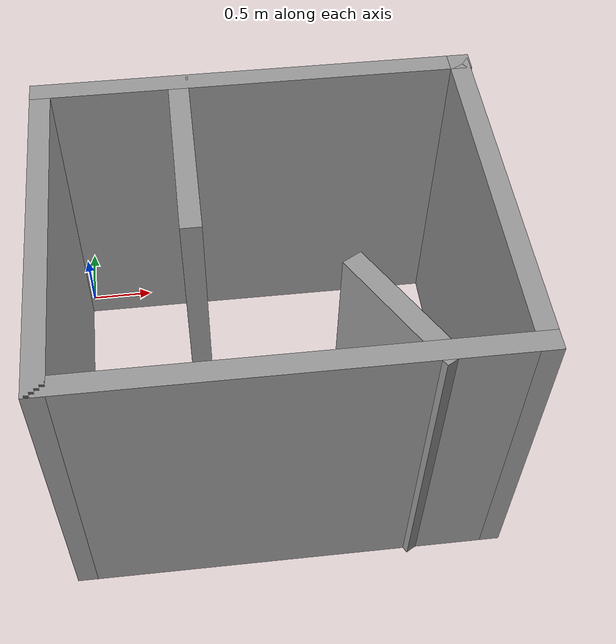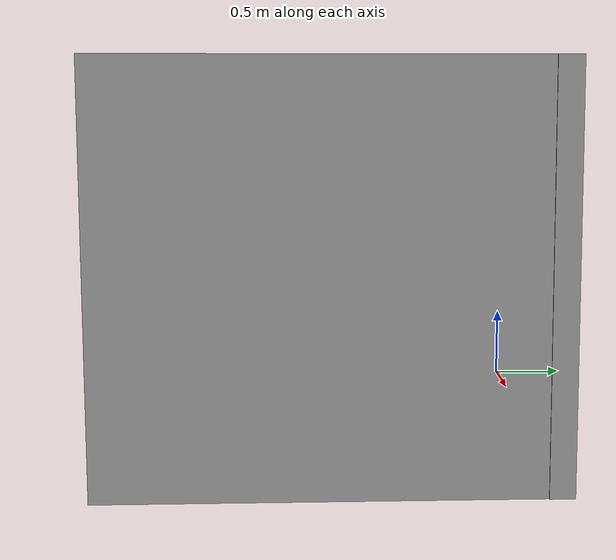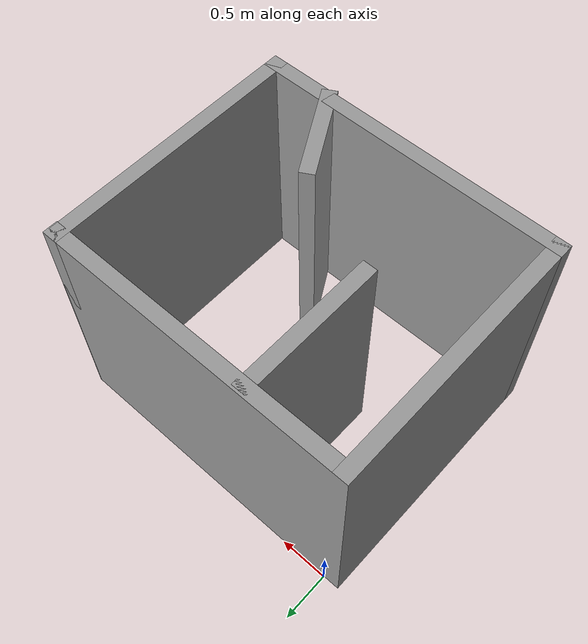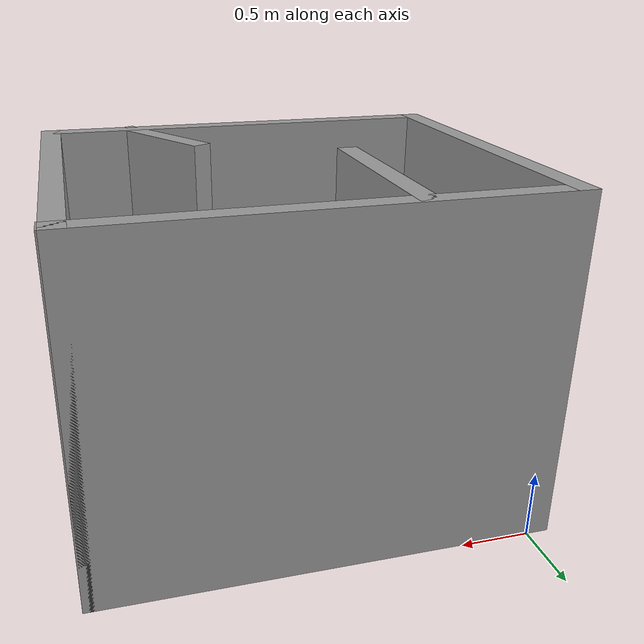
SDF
<?xml version='1.0'?>
<sdf version='1.6'>
  <model name='larissa_1'>
    <pose frame=''>1.465 -1.40121 0 0 -0 0</pose>
    <link name='Wall_12'>
      <collision name='Wall_12_Collision'>
        <geometry>
          <box>
            <size>3.25 0.15 2.5</size>
          </box>
        </geometry>
        <pose frame=''>0 0 1.25 0 -0 0</pose>
      </collision>
      <visual name='Wall_12_Visual'>
        <pose frame=''>0 0 1.25 0 -0 0</pose>
        <geometry>
          <box>
            <size>3.25 0.15 2.5</size>
          </box>
        </geometry>
        <material>
          <script>
            <uri>file://media/materials/scripts/gazebo.material</uri>
            <name>Gazebo/Grey</name>
          </script>
          <ambient>1 1 1 1</ambient>
        </material>
        <meta>
          <layer>0</layer>
        </meta>
      </visual>
      <pose frame=''>-0.005 -1.27879 0 0 -0 0</pose>
    </link>
    <link name='Wall_13'>
      <collision name='Wall_13_Collision'>
        <geometry>
          <box>
            <size>2.75 0.15 2.5</size>
          </box>
        </geometry>
        <pose frame=''>0 0 1.25 0 -0 0</pose>
      </collision>
      <visual name='Wall_13_Visual'>
        <pose frame=''>0 0 1.25 0 -0 0</pose>
        <geometry>
          <box>
            <size>2.75 0.15 2.5</size>
          </box>
        </geometry>
        <material>
          <script>
            <uri>file://media/materials/scripts/gazebo.material</uri>
            <name>Gazebo/Grey</name>
          </script>
          <ambient>1 1 1 1</ambient>
        </material>
        <meta>
          <layer>0</layer>
        </meta>
      </visual>
      <pose frame=''>1.545 0.021206 0 0 -0 1.5708</pose>
    </link>
    <link name='Wall_17'>
      <collision name='Wall_17_Collision'>
        <geometry>
          <box>
            <size>1.5 0.15 2.5</size>
          </box>
        </geometry>
        <pose frame=''>0 0 1.25 0 -0 0</pose>
      </collision>
      <visual name='Wall_17_Visual'>
        <pose frame=''>0 0 1.25 0 -0 0</pose>
        <geometry>
          <box>
            <size>1.5 0.15 2.5</size>
          </box>
        </geometry>
        <material>
          <script>
            <uri>file://media/materials/scripts/gazebo.material</uri>
            <name>Gazebo/Grey</name>
          </script>
          <ambient>1 1 1 1</ambient>
        </material>
        <meta>
          <layer>0</layer>
        </meta>
      </visual>
      <pose frame=''>-0.551015 0.621246 0 0 -0 -1.5708</pose>
    </link>
    <link name='Wall_19'>
      <collision name='Wall_19_Collision'>
        <geometry>
          <box>
            <size>1 0.15 2.5</size>
          </box>
        </geometry>
        <pose frame=''>0 0 1.25 0 -0 0</pose>
      </collision>
      <visual name='Wall_19_Visual'>
        <pose frame=''>0 0 1.25 0 -0 0</pose>
        <geometry>
          <box>
            <size>1 0.15 2.5</size>
          </box>
        </geometry>
        <material>
          <script>
            <uri>file://media/materials/scripts/gazebo.material</uri>
            <name>Gazebo/Grey</name>
          </script>
          <ambient>1 1 1 1</ambient>
        </material>
        <meta>
          <layer>0</layer>
        </meta>
      </visual>
      <pose frame=''>0.706485 -0.925693 0 0 -0 2.0944</pose>
    </link>
    <link name='Wall_2'>
      <collision name='Wall_2_Collision'>
        <geometry>
          <box>
            <size>2.75 0.15 2.5</size>
          </box>
        </geometry>
        <pose frame=''>0 0 1.25 0 -0 0</pose>
      </collision>
      <visual name='Wall_2_Visual'>
        <pose frame=''>0 0 1.25 0 -0 0</pose>
        <geometry>
          <box>
            <size>2.75 0.15 2.5</size>
          </box>
        </geometry>
        <material>
          <script>
            <uri>file://media/materials/scripts/gazebo.material</uri>
            <name>Gazebo/Grey</name>
          </script>
          <ambient>1 1 1 1</ambient>
        </material>
        <meta>
          <layer>0</layer>
        </meta>
      </visual>
      <pose frame=''>-1.555 0.021206 0 0 -0 1.5708</pose>
    </link>
    <link name='Wall_5'>
      <collision name='Wall_5_Collision'>
        <geometry>
          <box>
            <size>3.25 0.15 2.5</size>
          </box>
        </geometry>
        <pose frame=''>0 0 1.25 0 -0 0</pose>
      </collision>
      <visual name='Wall_5_Visual'>
        <pose frame=''>0 0 1.25 0 -0 0</pose>
        <geometry>
          <box>
            <size>3.25 0.15 2.5</size>
          </box>
        </geometry>
        <material>
          <script>
            <uri>file://media/materials/scripts/gazebo.material</uri>
            <name>Gazebo/Grey</name>
          </script>
          <ambient>1 1 1 1</ambient>
        </material>
        <meta>
          <layer>0</layer>
        </meta>
      </visual>
      <pose frame=''>-0.005 1.32121 0 0 -0 0</pose>
    </link>
    <link name='Wall_6'>
      <collision name='Wall_6_Collision'>
        <geometry>
          <box>
            <size>0.16 0.15 2.5</size>
          </box>
        </geometry>
        <pose frame=''>0 0 1.25 0 -0 0</pose>
      </collision>
      <visual name='Wall_6_Visual'>
        <pose frame=''>0 0 1.25 0 -0 0</pose>
        <geometry>
          <box>
            <size>0.16 0.15 2.5</size>
          </box>
        </geometry>
        <material>
          <script>
            <uri>file://media/materials/scripts/gazebo.material</uri>
            <name>Gazebo/Grey</name>
          </script>
          <ambient>1 1 1 1</ambient>
        </material>
        <meta>
          <layer>0</layer>
        </meta>
      </visual>
      <pose frame=''>1.55 1.32121 0 0 -0 0</pose>
    </link>
    <static>1</static>
  </model>
</sdf>
